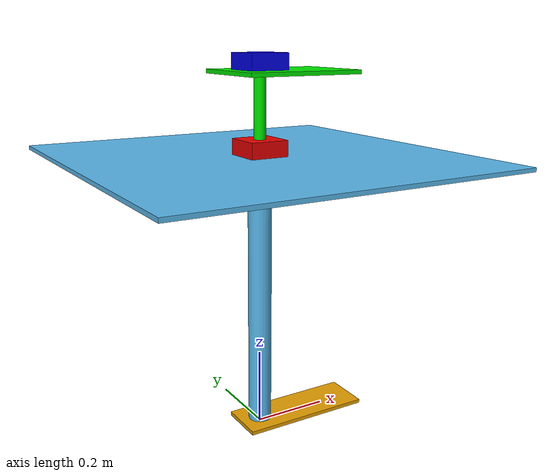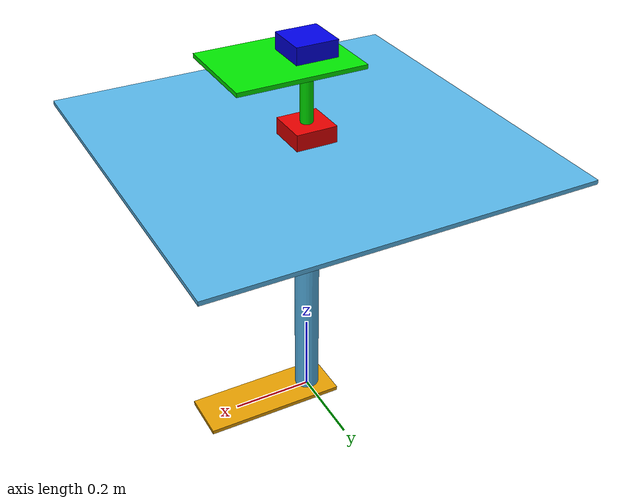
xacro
<?xml version="1.0"?>
<robot name="DoubleTableCart" xmlns:xacro="http://www.ros.org/wiki/xacro">
  <!-- Based on Atalante empty model URDF.
    - Thigh setting: 432mm, Shank setting: 426mm
  -->
  <xacro:property name="L_x_F_min" value="5.7e-2"/>
  <xacro:property name="L_x_F_max" value="29.3e-2"/>
  <xacro:property name="L_y_F" value="6.1e-2"/>
  <xacro:property name="m_R" value="74.8"/>
  <xacro:property name="I_R_xx" value="13.257"/>
  <xacro:property name="I_R_xy" value="0.064"/>
  <xacro:property name="I_R_xz" value="1.283"/>
  <xacro:property name="I_R_yy" value="11.849"/>
  <xacro:property name="I_R_yz" value="-0.095"/>
  <xacro:property name="I_R_zz" value="3.343"/>
  <xacro:property name="z_R" value="72.1e-2"/>
  <xacro:property name="F_x_R_max" value="2.68e3"/>
  <xacro:property name="F_y_R_max" value="1.64e3"/>
  <xacro:property name="v_x_R_max" value="2.23"/>
  <xacro:property name="v_y_R_max" value="0.79"/>
  <!-- Based on human model URDF.
    - Subject Id: 3, Mass=75.4Kg, Height=180cm:
      https://github.com/robotology/human-gazebo
  -->
  <xacro:property name="has_patient" value="true"/>
  <xacro:property name="m_P_l" value="32.6"/>
  <xacro:property name="x_P" value="0.4e-2"/>
  <xacro:property name="I_P_l_xx" value="3.570"/>
  <xacro:property name="I_P_l_xy" value="0.0"/>
  <xacro:property name="I_P_l_xz" value="0.110"/>
  <xacro:property name="I_P_l_yy" value="3.345"/>
  <xacro:property name="I_P_l_yz" value="0.0"/>
  <xacro:property name="I_P_l_zz" value="0.328"/>
  <xacro:property name="m_P_u" value="42.8"/>
  <xacro:property name="I_P_u_xx" value="3.418"/>
  <xacro:property name="I_P_u_xy" value="0.0"/>
  <xacro:property name="I_P_u_xz" value="-0.003"/>
  <xacro:property name="I_P_u_yy" value="0.886"/>
  <xacro:property name="I_P_u_yz" value="0.0"/>
  <xacro:property name="I_P_u_zz" value="2.651"/>
  <xacro:property name="z_P" value="20.3e-2"/>
  <xacro:property name="L_x_P_min" value="3.6e-2"/>
  <xacro:property name="L_x_P_max" value="16.5e-2"/>
  <xacro:property name="L_y_P" value="6.2e-2"/>
  <xacro:property name="F_x_P_max" value="2.0e2"/>
  <xacro:property name="F_y_P_max" value="3.0e2"/>
  <xacro:property name="v_x_P_max" value="3.0"/>
  <xacro:property name="v_y_P_max" value="1.0"/>

  <!-- Table -->
  <link name="Foot">
    <visual>
      <geometry>
        <box size="${L_x_F_min + L_x_F_max} ${2 * L_y_F} 0.01"/>
      </geometry>
      <origin xyz="${(L_x_F_max - L_x_F_min) / 2} 0.0 0.005" rpy="0.0 0.0 0.0"/>
    </visual>
    <collision>
      <geometry>
        <sphere radius="0.005"/>
      </geometry>
      <origin xyz="${- L_x_F_min} ${- L_y_F} 0.005" rpy="0.0 0.0 0.0"/>
    </collision>
    <collision>
      <geometry>
        <sphere radius="0.005"/>
      </geometry>
      <origin xyz="${L_x_F_max} ${- L_y_F} 0.005" rpy="0.0 0.0 0.0"/>
    </collision>
    <collision>
      <geometry>
        <sphere radius="0.005"/>
      </geometry>
      <origin xyz="${- L_x_F_min} ${L_y_F} 0.005" rpy="0.0 0.0 0.0"/>
    </collision>
    <collision>
      <geometry>
        <sphere radius="0.005"/>
      </geometry>
      <origin xyz="${L_x_F_max} ${L_y_F} 0.005" rpy="0.0 0.0 0.0"/>
    </collision>
    <inertial>
      <mass value="0.0"/>
      <inertia ixx="0.0" ixy="0.0" ixz="0.0" iyy="0.0" iyz="0.0" izz="0.0"/>
      <origin xyz="0.0 0.0 0.0" rpy="0.0 0.0 0.0"/>
    </inertial>
  </link>
  <link name="TableTop">
    <visual>
      <geometry>
        <box size="0.90 0.90 0.01"/>
      </geometry>
      <origin xyz="0.0 0.0 ${z_R}" rpy="0.0 0.0 0.0"/>
    </visual>
    <visual>
      <geometry>
        <cylinder length="${z_R - 0.015}" radius="0.03"/>
      </geometry>
      <origin xyz="0.0 0.0 ${z_R / 2 + 0.0025}" rpy="0.0 0.0 0.0"/>
    </visual>
    <inertial>
      <!-- Minimal inertia for the table to avoid numerical instabilities -->
      <mass value="1e-1"/>
      <inertia ixx="1.0e-4" ixy="1.0e-4" ixz="1.0e-4" iyy="1.0e-4" iyz="1.0e-4" izz="1.0e-4"/>
      <origin xyz="0.0 0.0 0.0" rpy="0.0 0.0 0.0"/>
    </inertial>
  </link>
  <joint name="FootTable" type="fixed">
    <origin xyz="0.0 0.0 0.0" rpy="0.0 0.0 0.0"/>
    <parent link="Foot"/>
    <child link="TableTop"/>
  </joint>

  <!-- Robot -->
  <link name="RobotCart">
    <visual>
      <geometry>
        <box size="0.10 0.10 0.04"/>
      </geometry>
      <material name="red">
        <color rgba="0.9 0.0 0.0 1"/>
      </material>
      <origin xyz="0.0 0.0 0.025" rpy="0.0 0.0 0.0"/>
    </visual>
    <inertial>
      <mass value="${m_R}"/>
      <inertia ixx="${I_R_xx}" ixy="${I_R_xy}" ixz="${I_R_xz}" iyy="${I_R_yy}" iyz="${I_R_yz}" izz="${I_R_zz}"/>
      <origin xyz="0.0 0.0 0.0" rpy="0.0 0.0 0.0"/>
    </inertial>
  </link>
  <joint name="RobotStrapsToPatient" type="fixed">
    <origin xyz="${x_P} 0.0 0.0" rpy="0.0 0.0 0.0"/>
    <parent link="RobotCart"/>
    <child link="RobotStraps"/>
  </joint>
  <link name="RobotStraps"/>
  <link name="RobotPlanarJoint"/>
  <joint name="TableTopToRobotCartX" type="prismatic">
    <origin xyz="0.0 0.0 ${z_R}" rpy="0.0 0.0 0.0"/>
    <axis xyz="1 0 0"/>
    <parent link="TableTop"/>
    <child link="RobotPlanarJoint"/>
    <limit effort="${F_x_R_max}" velocity="${v_x_R_max}" lower="-0.4" upper="0.4"/>
  </joint>
  <joint name="TableTopToRobotCartY" type="prismatic">
    <origin xyz="0.0 0.0 0.0" rpy="0.0 0.0 0.0"/>
    <axis xyz="0 1 0"/>
    <parent link="RobotPlanarJoint"/>
    <child link="RobotCart"/>
    <limit effort="${F_y_R_max}" velocity="${v_y_R_max}" lower="-0.4" upper="0.4"/>
  </joint>

  <xacro:if value="${has_patient}">
  <!-- Patient lower body -->
  <link name="PatientLowerBodyCart">
    <visual>
      <geometry>
        <box size="0.10 0.10 0.04"/>
      </geometry>
      <material name="green">
        <color rgba="0.0 0.9 0.0 1"/>
      </material>
      <origin xyz="0.0 0.0 0.025" rpy="0.0 0.0 0.0"/>
    </visual>
    <visual>
      <geometry>
        <cylinder length="${z_P - 0.045}" radius="0.015"/>
      </geometry>
      <material name="green">
        <color rgba="0.0 0.9 0.0 1"/>
      </material>
      <origin xyz="0.0 0.0 ${z_P / 2 + 0.02}" rpy="0.0 0.0 0.0"/>
    </visual>
    <visual>
      <geometry>
        <box size="${L_x_P_min + L_x_P_max + 0.10} ${2 * L_y_P + 0.10} 0.01"/>
      </geometry>
      <material name="green">
        <color rgba="0.0 0.9 0.0 1"/>
      </material>
      <origin xyz="${(L_x_P_max - L_x_P_min) / 2} 0.0 ${z_P}" rpy="0.0 0.0 0.0"/>
    </visual>
    <inertial>
      <mass value="${m_P_l}"/>
      <inertia ixx="${I_P_l_xx}" ixy="${I_P_l_xy}" ixz="${I_P_l_xz}" iyy="${I_P_l_yy}" iyz="${I_P_l_yz}" izz="${I_P_l_zz}"/>
      <origin xyz="0.0 0.0 0.0" rpy="0.0 0.0 0.0"/>
    </inertial>
  </link>
  <link name="PatientLowerBodyPlanarJoint"/>
  <joint name="TableTopToPatientLowerBodyCartX" type="prismatic">
    <origin xyz="0.0 0.0 ${z_R}" rpy="0.0 0.0 0.0"/>
    <axis xyz="1 0 0"/>
    <parent link="TableTop"/>
    <child link="PatientLowerBodyPlanarJoint"/>
    <limit effort="1000.0" velocity="100.0" lower="-0.4" upper="0.4"/>
  </joint>
  <joint name="TableTopToPatientLowerBodyCartY" type="prismatic">
    <origin xyz="0.0 0.0 0.0" rpy="0.0 0.0 0.0"/>
    <axis xyz="0 1 0"/>
    <parent link="PatientLowerBodyPlanarJoint"/>
    <child link="PatientLowerBodyCart"/>
    <limit effort="1000.0" velocity="100.0" lower="-0.4" upper="0.4"/>
  </joint>

  <!-- Patient upper body -->
  <link name="PatientUpperBodyCart">
    <visual>
      <geometry>
        <box size="0.10 0.10 0.04"/>
      </geometry>
      <material name="blue">
        <color rgba="0.0 0.0 0.9 1"/>
      </material>
      <origin xyz="0.0 0.0 0.025" rpy="0.0 0.0 0.0"/>
    </visual>
    <inertial>
      <mass value="${m_P_u}"/>
      <inertia ixx="${I_P_u_xx}" ixy="${I_P_u_xy}" ixz="${I_P_u_xz}" iyy="${I_P_u_yy}" iyz="${I_P_u_yz}" izz="${I_P_u_zz}"/>
      <origin xyz="0.0 0.0 0.0" rpy="0.0 0.0 0.0"/>
    </inertial>
  </link>
  <link name="PatientTableTop"/>
  <joint name="PatientLowerBodyToTableTop" type="fixed">
    <origin xyz="0.0 0.0 ${z_P}" rpy="0.0 0.0 0.0"/>
    <parent link="PatientLowerBodyCart"/>
    <child link="PatientTableTop"/>
  </joint>
  <link name="PatientUpperBodyPlanarJoint"/>
  <joint name="PatientLowerBodyToPatientUpperBodyCartX" type="prismatic">
    <origin xyz="0.0 0.0 0.0" rpy="0.0 0.0 0.0"/>
    <axis xyz="1 0 0"/>
    <parent link="PatientTableTop"/>
    <child link="PatientUpperBodyPlanarJoint"/>
    <limit effort="${F_x_P_max}" velocity="${v_x_P_max}" lower="${- L_x_P_min}" upper="${L_x_P_max}"/>
  </joint>
  <joint name="PatientLowerBodyToPatientUpperBodyCartY" type="prismatic">
    <origin xyz="0.0 0.0 0.0" rpy="0.0 0.0 0.0"/>
    <axis xyz="0 1 0"/>
    <parent link="PatientUpperBodyPlanarJoint"/>
    <child link="PatientUpperBodyCart"/>
    <limit effort="${F_y_P_max}" velocity="${v_y_P_max}" lower="${- L_y_P}" upper="${L_y_P}"/>
  </joint>
  </xacro:if>
</robot>
